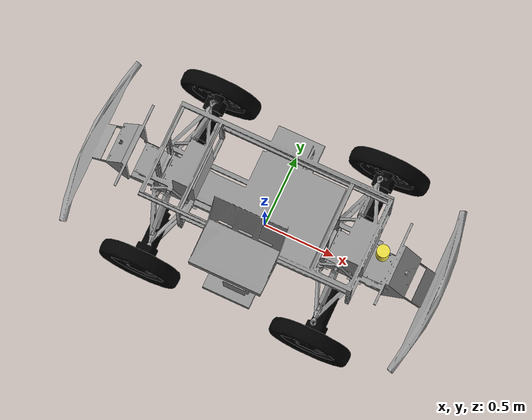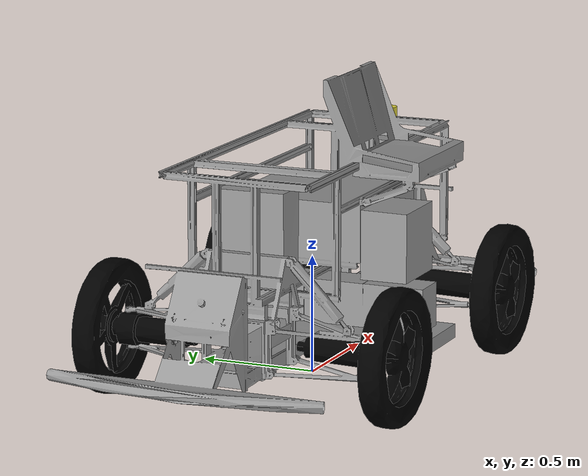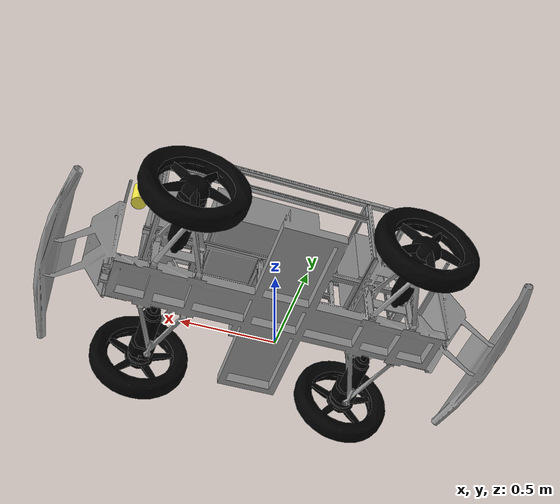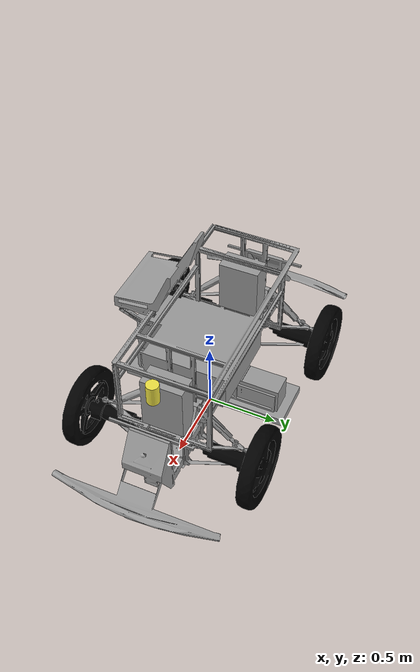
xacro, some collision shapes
<robot name="robucar_robot" xmlns:xacro="http://www.ros.org/wiki/xacro">

  <xacro:arg name="laser_enabled" default="false" />
  <xacro:arg name="camera_enabled" default="false" />
  <xacro:arg name="navsat_enabled" default="true" />
  <xacro:arg name="velodyne_enabled" default="true" />

  <xacro:include filename="$(find robucar_description)/urdf/robucar.urdf.xacro" />
  <xacro:robucar />

</robot>

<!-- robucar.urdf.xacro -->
<robot name="robucar" xmlns:xacro="http://www.ros.org/wiki/xacro">

  <xacro:arg name="laser_enabled" default="false" />
  <xacro:arg name="camera_enabled" default="false" />
  <xacro:arg name="navsat_enabled" default="false" />
  <xacro:arg name="velodyne_enabled" default="false" />

  <xacro:include filename="$(find robucar_description)/urdf/wheel_steered.xacro" />
  <xacro:include filename="$(find robucar_description)/urdf/chassis.xacro" />

  <xacro:property name="M_PI" value="3.14159"/>

  <xacro:macro name="robucar">

    <xacro:chassis/>

    <!-- IMU Link is the standard mounting position for the IMU.-->
    <link name="imu_link"/>
    <joint name="imu_joint" type="fixed">
      <origin xyz="0.35 0 0.1" rpy="0 0 0" />
      <parent link="base_link" />
      <child link="imu_link" />
    </joint>

    <!-- Wheel macros -->
    <xacro:wheel_steered wheel_prefix="front_left" parent_link="base_link" wheel_origin_y="${wheel_y_offset}" left_right="-1">
      <origin xyz="${wheelbase/2+wheel_x_offset} ${track/2-wheel_y_offset} ${-base_z_size/2 + wheel_radius - ground_clearance}" rpy="0 0 0" />
    </xacro:wheel_steered>
    <xacro:wheel_steered wheel_prefix="front_right" parent_link="base_link" wheel_origin_y="${-wheel_y_offset}" left_right="1">
      <origin xyz="${wheelbase/2+wheel_x_offset} ${-track/2+wheel_y_offset} ${-base_z_size/2 + wheel_radius - ground_clearance}" rpy="0 0 0" />
    </xacro:wheel_steered>
    <xacro:wheel wheel_prefix="rear_left" parent_link="base_link" left_right="-1">
      <origin xyz="${-wheelbase/2+wheel_x_offset} ${track/2} ${-base_z_size/2 + wheel_radius - ground_clearance}" rpy="0 0 0" />
    </xacro:wheel>
    <xacro:wheel wheel_prefix="rear_right" parent_link="base_link" left_right="1">
      <origin xyz="${-wheelbase/2+wheel_x_offset} ${-track/2} ${-base_z_size/2 + wheel_radius - ground_clearance}" rpy="0 0 0" />
    </xacro:wheel>

    <xacro:if value="$(arg laser_enabled)">
      <!-- Hokuyo UTM-30LX mounted upside down below the body -->
    </xacro:if>

    <xacro:if value="$(arg camera_enabled)">
      <link name="camera_link"/>
      <joint name="camera_joint" type="fixed">
        <origin xyz="0.35 0 0.41" rpy="0 0 0" />
        <parent link="base_link" />
        <child link="camera_link" />
      </joint>
    </xacro:if>

    <xacro:if value="$(arg navsat_enabled)">
      <link name="navsat_link"/>
      <joint name="navsat_joint" type="fixed">
        <origin xyz="0.3 0 0.3" rpy="0 0 0" />
        <parent link="base_link" />
        <child link="navsat_link" />
      </joint>
    </xacro:if>

    <xacro:if value="$(arg velodyne_enabled)">
      <xacro:include filename="$(find velodyne_description)/urdf/HDL-32E.urdf.xacro"/>
      <HDL-32E parent="base_link" name="velodyne2" topic="/velodyne_points2">
        <origin xyz="${base_x_size/2-0.01} 0 ${base_z_size/2}" rpy="0 0 0" />
      </HDL-32E>
    </xacro:if>

  </xacro:macro>
</robot>

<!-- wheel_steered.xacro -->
<robot xmlns:xacro="http://www.ros.org/wiki/xacro" name="wheel_steered">

  <xacro:property name="steering_link_y" value="0.05" />
  <xacro:property name="steering_link_xz" value="0.1" />
  <xacro:property name="steering_link_mass" value="0.4" />

  <xacro:include filename="$(find robucar_description)/urdf/wheel.xacro" />

  <xacro:macro name="wheel_steered" params="wheel_prefix parent_link wheel_origin_y left_right *joint_origin ">
    <link name="${wheel_prefix}_steering">
      <visual>
        <origin xyz="0 0 0" rpy="0 0 0"/>
        <geometry>
          <box size="0.05 ${steering_link_y} 0.05"/>
        </geometry>
        <material name="blue">
          <color rgba="0.2 0.2 0.6 1"/>
        </material>
      </visual>
      <inertial>
        <mass value="${steering_link_mass}" />
        <origin xyz="0 0 0" />

        <inertia ixx="0.0030791666666666667" ixy="0" ixz="0"
                 iyy="0.0030791666666666667" iyz="0"
                 izz="0.0030791666666666667"/>
      </inertial>
    </link>

    <joint name="${wheel_prefix}_steering_joint" type="revolute">
      <limit lower="${-M_PI/6}" upper="${M_PI/6}" effort="1000.0" velocity="1.0"/>
      <axis xyz="0 0 1"/>
      <parent link="${parent_link}"/>
      <child link="${wheel_prefix}_steering"/>
      <xacro:insert_block name="joint_origin"/>
    </joint>

    <transmission name="${wheel_prefix}_steering_trans" type="SimpleTransmission">
      <type>transmission_interface/SimpleTransmission</type>
      <actuator name="${wheel_prefix}_steering_motor">
        <mechanicalReduction>1</mechanicalReduction>
      </actuator>
      <joint name="${wheel_prefix}_steering_joint">
        <!-- deprecated in kinetic but only way to make it works on indigo -->
        <hardwareInterface>PositionJointInterface</hardwareInterface>
      </joint>
    </transmission>

    <xacro:wheel wheel_prefix="${wheel_prefix}" parent_link="${wheel_prefix}_steering" left_right="${left_right}">
      <origin xyz="0 ${wheel_origin_y} 0" rpy="0 0 0" />
    </xacro:wheel>
  </xacro:macro>

</robot>

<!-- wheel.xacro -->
<robot xmlns:xacro="http://www.ros.org/wiki/xacro" name="wheel">

  <!-- Wheel Properties -->
  <xacro:property name="wheel_length" value="0.1" />
  <xacro:property name="wheel_radius" value="0.28" />
  <xacro:property name="mass_wheel" value="0.1" />

  <xacro:macro name="wheel" params="wheel_prefix parent_link left_right *joint_origin">
    <gazebo reference="${wheel_prefix}_wheel_link">
      <material>Gazebo/Black</material>
    </gazebo>
    <link name="${wheel_prefix}_wheel_link">
      <inertial>
        <mass value="${mass_wheel}" />
        <origin xyz="0 0 0" rpy="${M_PI/2} 0 0" />
        <inertia ixx="0.0030791666666666667" ixy="0" ixz="0"
                 iyy="0.0030791666666666667" iyz="0"
                 izz="0.005625"/>

      </inertial>
      <visual>
        <origin xyz="0 0 0" rpy="${left_right * M_PI/2}  0 0" />
        <geometry>
          <mesh filename="package://robucar_description/meshes/robufast_wheel.dae"/>
        </geometry>
        <material name="black">
          <color rgba="0 0 0 1"/>
        </material>
      </visual>
      <collision>
        <origin xyz="0 0 0" rpy="${M_PI/2} 0 0" />
        <geometry>
          <cylinder length="${wheel_length}" radius="${wheel_radius}" />
        </geometry>
      </collision>
    </link>

    <joint name="${wheel_prefix}_wheel" type="continuous">
      <parent link="${parent_link}"/>
      <child link="${wheel_prefix}_wheel_link"/>
      <xacro:insert_block name="joint_origin"/>
      <axis xyz="0 1 0" rpy="0 0 0" />
    </joint>

    <transmission name="${wheel_prefix}_wheel_trans" type="SimpleTransmission">
      <type>transmission_interface/SimpleTransmission</type>
      <actuator name="${wheel_prefix}_wheel_motor">
        <mechanicalReduction>1</mechanicalReduction>
      </actuator>
      <joint name="${wheel_prefix}_wheel">
        <!-- deprecated in kinetic but only way to make it works on indigo -->
        <hardwareInterface>VelocityJointInterface</hardwareInterface>
      </joint>
    </transmission>

  </xacro:macro>
</robot>

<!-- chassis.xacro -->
<robot xmlns:xacro="http://www.ros.org/wiki/xacro" name="chassis">
  <!-- Base Properties -->
  <xacro:property name="mass_base" value="10" />
  <xacro:property name="base_x_size" value="1.66000" />
  <xacro:property name="base_y_size" value="0.60000" />
  <xacro:property name="base_z_size" value="0.66000" />

  <xacro:property name="wheelbase" value="1.22" />
  <xacro:property name="track" value="1.23" />

  <!-- Wheel Mounting Positions -->
  <xacro:property name="ground_clearance" value="0.19" />
  <xacro:property name="wheel_x_offset" value="0.0" />
  <xacro:property name="wheel_y_offset" value="0.1" />

  <!-- LIDAR Properties -->
  <xacro:property name="lidar_ground_clearance" value="0.69" />
  <xacro:property name="lidar_x_offset" value="0.9" />

  <xacro:macro name="chassis">
    <!-- Base footprint is on the ground under the robot -->
    <link name="base_footprint"/>

    <gazebo reference="base_link">
      <material>Gazebo/Grey</material>
    </gazebo>
    <!-- Base link is the center of the robot's bottom plate -->
    <link name="base_link">
      <visual>
        <origin xyz="-0.5 -0.04 -0.06" rpy="0 0 ${M_PI/2.0}" />
        <geometry>
          <mesh filename="package://robucar_description/meshes/robufast_frame.dae"/>
        </geometry>
        <material name="grey">
          <color rgba="0.6 0.6 0.6 1"/>
        </material>
      </visual>
      <collision>
        <geometry>
          <box size="${base_x_size} ${base_y_size} ${base_z_size}"/>
        </geometry>
      </collision>
    </link>
    <joint name="base_footprint_joint" type="fixed">
      <origin xyz="0 0 ${ground_clearance + base_z_size/2}" rpy="0 0 0" />
      <child link="base_link" />
      <parent link="base_footprint" />
    </joint>

    <!-- Interial link stores the robot's inertial information -->
    <link name="inertial_link">
      <inertial>
        <mass value="${mass_base}" />
        <origin xyz="0 0 0" />
        <inertia ixx="0.21666666666666667" ixy="0" ixz="0"
                 iyy="0.8416666666666667" iyz="0"
                 izz="1.0416666666666667" />
      </inertial>
    </link>

    <joint name="inertial_joint" type="fixed">
      <origin xyz="0 0 0" rpy="0 0 0" />
      <parent link="base_link" />
      <child link="inertial_link" />
    </joint>
  </xacro:macro>
</robot>

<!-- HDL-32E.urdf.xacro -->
<robot xmlns:xacro="http://www.ros.org/wiki/xacro" name="HDL-32E">
  <xacro:property name="M_PI" value="3.1415926535897931" />
  <xacro:macro name="HDL-32E" params="*origin parent:=base_link name:=velodyne tf_prefix:='' topic:=/velodyne_points organize_cloud:=false hz:=10 lasers:=32 samples:=2187 collision_range:=0.3 min_range:=0.9 max_range:=130.0 noise:=0.008 min_angle:=-${M_PI} max_angle:=${M_PI} gpu:=false">

    <joint name="${name}_base_mount_joint" type="fixed">
      <xacro:insert_block name="origin" />
      <parent link="${parent}"/>
      <child link="${name}_base_link"/>
    </joint>

    <link name="${name}_base_link">
      <inertial>
        <mass value="1.0"/>
        <origin xyz="0 0 0.07212"/>
        <inertia ixx="${(1.0 * (3.0*0.04267*0.04267 + 0.14424*0.14424)) / 12.0}" ixy="0" ixz="0"
          iyy="${(1.0 * (3.0*0.04267*0.04267 + 0.14424*0.14424)) / 12.0}" iyz="0"
          izz="${0.5 * 1.0 * (0.04267*0.04267)}"/>
      </inertial>
      <visual>
        <geometry>
          <mesh filename="package://velodyne_description/meshes/HDL32E_base.dae" />
        </geometry>
      </visual>
      <collision>
        <origin rpy="0 0 0" xyz="0 0 0.07212"/>
        <geometry>
          <cylinder radius="0.04267" length="0.14424"/>
        </geometry>
      </collision>
    </link>

    <joint name="${name}_base_scan_joint" type="fixed" >
      <origin xyz="0 0 0.09081" rpy="0 0 0" />
      <parent link="${name}_base_link" />
      <child link="${name}"/>
    </joint>

    <link name="${name}">
      <inertial>
        <mass value="0.01"/>
        <origin xyz="0 0 0"/>
        <inertia ixx="1e-7" ixy="0" ixz="0" iyy="1e-7" iyz="0" izz="1e-7"/>
      </inertial>
      <visual>
        <origin xyz="0 0 -0.09081" rpy="0 0 0" />
        <geometry>
          <mesh filename="package://velodyne_description/meshes/HDL32E_scan.dae" />
        </geometry>
      </visual>
      <collision>
        <geometry>
          <sphere radius="0"/>
        </geometry>
      </collision>
    </link>

    <!-- Gazebo requires the velodyne_gazebo_plugins package -->
    <gazebo reference="${name}">
      <xacro:if value="${gpu}">
        <sensor type="gpu_ray" name="${name}-HDL32E">
          <pose>0 0 0 0 0 0</pose>
          <visualize>false</visualize>
          <update_rate>${hz}</update_rate>
          <ray>
            <scan>
              <horizontal>
                <samples>${samples}</samples>
                <resolution>1</resolution>
                <min_angle>${min_angle}</min_angle>
                <max_angle>${max_angle}</max_angle>
              </horizontal>
              <vertical>
                <samples>${lasers}</samples>
                <resolution>1</resolution>
                <min_angle>-${5.0*M_PI/180.0}</min_angle>
                <max_angle> ${85.0*M_PI/180.0}</max_angle>
              </vertical>
            </scan>
            <range>
              <min>${collision_range}</min>
              <max>${max_range+1}</max>
              <resolution>0.001</resolution>
            </range>
            <noise>
              <type>gaussian</type>
              <mean>0.0</mean>
              <stddev>0.0</stddev>
            </noise>
          </ray>
          <plugin name="gazebo_ros_laser_controller" filename="libgazebo_ros_velodyne_laser.so">
            <ros>
              <namespace>/${name}</namespace>
              <remapping>~/out:=${topic}</remapping>
            </ros>
            <tf_prefix>${tf_prefix}</tf_prefix>
            <frame_name>${name}</frame_name>
            <organize_cloud>${organize_cloud}</organize_cloud>
            <min_range>${min_range}</min_range>
            <max_range>${max_range}</max_range>
            <gaussian_noise>${noise}</gaussian_noise>
          </plugin>
        </sensor>
      </xacro:if>
      <xacro:unless value="${gpu}">
        <sensor type="ray" name="${name}-HDL32E">
          <pose>0 0 0 0 0 0</pose>
          <visualize>false</visualize>
          <update_rate>${hz}</update_rate>
          <ray>
            <scan>
              <horizontal>
                <samples>${samples}</samples>
                <resolution>1</resolution>
                <min_angle>${min_angle}</min_angle>
                <max_angle>${max_angle}</max_angle>
              </horizontal>
              <vertical>
                <samples>${lasers}</samples>
                <resolution>1</resolution>
                <min_angle>-${5.0*M_PI/180.0}</min_angle>
                <max_angle> ${85.0*M_PI/180.0}</max_angle>
              </vertical>
            </scan>
            <range>
              <min>${collision_range}</min>
              <max>${max_range+1}</max>
              <resolution>0.001</resolution>
            </range>
            <noise>
              <type>gaussian</type>
              <mean>0.0</mean>
              <stddev>0.0</stddev>
            </noise>
          </ray>
          <plugin name="gazebo_ros_laser_controller" filename="libgazebo_ros_velodyne_laser.so">
            <ros>
              <namespace>/${name}</namespace>
              <remapping>~/out:=${topic}</remapping>
            </ros>
            <tf_prefix>${tf_prefix}</tf_prefix>
            <frame_name>${name}</frame_name>
            <organize_cloud>${organize_cloud}</organize_cloud>
            <min_range>${min_range}</min_range>
            <max_range>${max_range}</max_range>
            <gaussian_noise>${noise}</gaussian_noise>
          </plugin>
        </sensor>
      </xacro:unless>
    </gazebo>

  </xacro:macro>
</robot>
